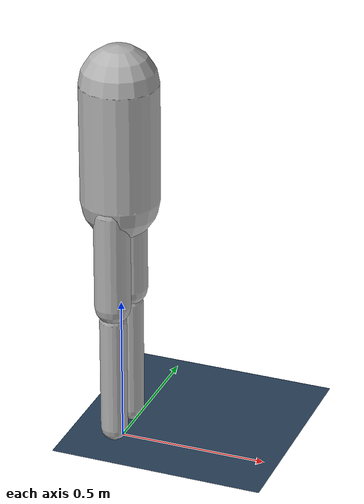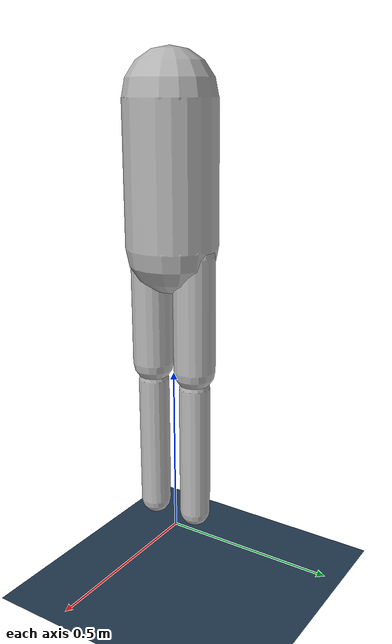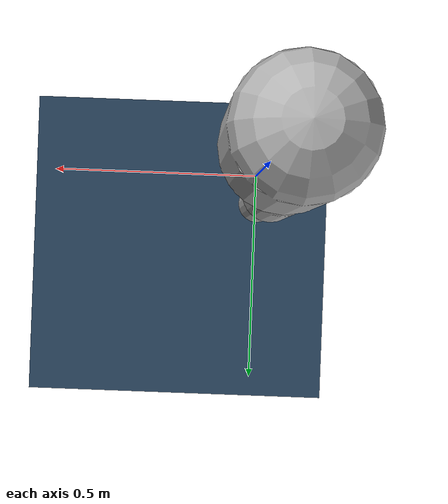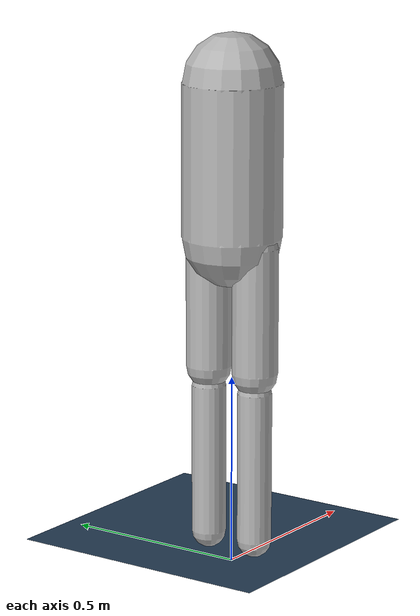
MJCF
<mujoco model="yumi scene">
  <include file="yumi.xml"/>

  <visual>
    <headlight diffuse="0.6 0.6 0.6" ambient="0.1 0.1 0.1" specular="0.9 0.9 0.9"/>
  </visual>

  <asset>
    <texture type="skybox" builtin="flat" rgb1="0 0 0" rgb2="0 0 0" width="512" height="3072"/>
    <texture type="2d" name="groundplane" builtin="checker" mark="edge" rgb1="0.2 0.3 0.4" rgb2="0.1 0.2 0.3" markrgb="0.8 0.8 0.8" width="300" height="300"/>
    <material name="groundplane" texture="groundplane" texuniform="true" texrepeat="5 5" reflectance="0.2"/>
  </asset>

  <worldbody>
    <light pos="1 0 3.5" dir="0 0 -1" directional="true"/>
    <geom name="floor" size="0 0 0.05" type="plane" material="groundplane"/>
  </worldbody>
</mujoco>

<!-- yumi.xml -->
<mujoco model="yumi_12dof">
  <compiler angle="radian"/>

  <default>
    <joint damping="0.001" armature="0.01" frictionloss="0.1"/>
  </default>

  <worldbody>
    <body name="pelvis" pos="0 0 0.923">
      <inertial pos="0 0 0.15" mass="25.7" diaginertia="0.66 0.77 0.24"/>
      <joint name="floating_base_joint" type="free" limited="false" actuatorfrclimited="false"/>
      <geom type="capsule" size="0.13 0.20" pos="0 0 0.15" contype="0" conaffinity="1" density="0" rgba="0.7 0.7 0.7 1"/>

      <body name="left_hip_pitch_link" pos="0 0.07229 -0.039">
        <inertial pos="0 0 0" mass="0.3" diaginertia="0.0003 0.0003 0.0003"/>
        <joint name="left_hip_pitch_joint" pos="0 0 0" axis="0 1 0" range="-2.5307 2.8798" actuatorfrcrange="-120 120"/>
        <body name="left_hip_roll_link" pos="0 0 0">
          <inertial pos="0 0 0" mass="0.3" diaginertia="0.0003 0.0003 0.0003"/>
          <joint name="left_hip_roll_joint" pos="0 0 0" axis="1 0 0" range="-0.5236 2.9671" actuatorfrcrange="-150 150"/>
          <body name="left_hip_yaw_link" pos="0 0 0">
            <inertial pos="0 0 -0.196" mass="3.2" diaginertia="0.043 0.043 0.0058"/>
            <joint name="left_hip_yaw_joint" pos="0 0 0" axis="0 0 1" range="-2.7576 2.7576" actuatorfrcrange="-88 88"/>
            <geom type="capsule" size="0.06 0.166" pos="0 0 -0.196" contype="0" conaffinity="1" density="0" rgba="0.7 0.7 0.7 1"/>
            <body name="left_knee_link" pos="0 0 -0.39215">
              <inertial pos="0 0 -0.222" mass="1.77" diaginertia="0.0295 0.0295 0.0018"/>
              <joint name="left_knee_joint" pos="0 0 0" axis="0 1 0" range="-0.087267 2.8798" actuatorfrcrange="-150 150"/>
              <geom type="capsule" size="0.045 0.199" pos="0 0 -0.222" contype="0" conaffinity="1" density="0" rgba="0.7 0.7 0.7 1"/>
              <body name="left_ankle_pitch_link" pos="0 0 -0.44377">
                <inertial pos="0 0 0" mass="0.05" diaginertia="1e-5 1e-5 1e-5"/>
                <joint name="left_ankle_pitch_joint" pos="0 0 0" axis="0 1 0" range="-0.87267 0.5236" actuatorfrcrange="-60 60"/>
                <body name="left_ankle_roll_link" pos="0 0 0">
                  <inertial pos="0.028 0 -0.04" mass="0.55" diaginertia="0.00034 0.00129 0.0014"/>
                  <joint name="left_ankle_roll_joint" pos="0 0 0" axis="1 0 0" range="-0.2618 0.2618" actuatorfrcrange="-60 60"/>
                  <geom size="0.022" pos="-0.045 0.025 -0.076" rgba="0.2 0.2 0.2 1"/>
                  <geom size="0.022" pos="-0.045 -0.025 -0.076" rgba="0.2 0.2 0.2 1"/>
                  <geom size="0.022" pos="0.10 0.025 -0.076" rgba="0.2 0.2 0.2 1"/>
                  <geom size="0.022" pos="0.10 -0.025 -0.076" rgba="0.2 0.2 0.2 1"/>
                </body>
              </body>
            </body>
          </body>
        </body>
      </body>

      <body name="right_hip_pitch_link" pos="0 -0.07229 -0.039">
        <inertial pos="0 0 0" mass="0.3" diaginertia="0.0003 0.0003 0.0003"/>
        <joint name="right_hip_pitch_joint" pos="0 0 0" axis="0 1 0" range="-2.5307 2.8798" actuatorfrcrange="-120 120"/>
        <body name="right_hip_roll_link" pos="0 0 0">
          <inertial pos="0 0 0" mass="0.3" diaginertia="0.0003 0.0003 0.0003"/>
          <joint name="right_hip_roll_joint" pos="0 0 0" axis="1 0 0" range="-2.9671 0.5236" actuatorfrcrange="-150 150"/>
          <body name="right_hip_yaw_link" pos="0 0 0">
            <inertial pos="0 0 -0.196" mass="3.2" diaginertia="0.043 0.043 0.0058"/>
            <joint name="right_hip_yaw_joint" pos="0 0 0" axis="0 0 1" range="-2.7576 2.7576" actuatorfrcrange="-88 88"/>
            <geom type="capsule" size="0.06 0.166" pos="0 0 -0.196" contype="0" conaffinity="1" density="0" rgba="0.7 0.7 0.7 1"/>
            <body name="right_knee_link" pos="0 0 -0.39215">
              <inertial pos="0 0 -0.222" mass="1.77" diaginertia="0.0295 0.0295 0.0018"/>
              <joint name="right_knee_joint" pos="0 0 0" axis="0 1 0" range="-0.087267 2.8798" actuatorfrcrange="-150 150"/>
              <geom type="capsule" size="0.045 0.199" pos="0 0 -0.222" contype="0" conaffinity="1" density="0" rgba="0.7 0.7 0.7 1"/>
              <body name="right_ankle_pitch_link" pos="0 0 -0.44377">
                <inertial pos="0 0 0" mass="0.05" diaginertia="1e-5 1e-5 1e-5"/>
                <joint name="right_ankle_pitch_joint" pos="0 0 0" axis="0 1 0" range="-0.87267 0.5236" actuatorfrcrange="-60 60"/>
                <body name="right_ankle_roll_link" pos="0 0 0">
                  <inertial pos="0.028 0 -0.04" mass="0.55" diaginertia="0.00034 0.00129 0.0014"/>
                  <joint name="right_ankle_roll_joint" pos="0 0 0" axis="1 0 0" range="-0.2618 0.2618" actuatorfrcrange="-60 60"/>
                  <geom size="0.022" pos="-0.045 0.025 -0.076" rgba="0.2 0.2 0.2 1"/>
                  <geom size="0.022" pos="-0.045 -0.025 -0.076" rgba="0.2 0.2 0.2 1"/>
                  <geom size="0.022" pos="0.10 0.025 -0.076" rgba="0.2 0.2 0.2 1"/>
                  <geom size="0.022" pos="0.10 -0.025 -0.076" rgba="0.2 0.2 0.2 1"/>
                </body>
              </body>
            </body>
          </body>
        </body>
      </body>
    </body>
  </worldbody>

  <actuator>
    <motor name="left_hip_pitch_joint" joint="left_hip_pitch_joint"/>
    <motor name="left_hip_roll_joint" joint="left_hip_roll_joint"/>
    <motor name="left_hip_yaw_joint" joint="left_hip_yaw_joint"/>
    <motor name="left_knee_joint" joint="left_knee_joint"/>
    <motor name="left_ankle_pitch_joint" joint="left_ankle_pitch_joint"/>
    <motor name="left_ankle_roll_joint" joint="left_ankle_roll_joint"/>
    <motor name="right_hip_pitch_joint" joint="right_hip_pitch_joint"/>
    <motor name="right_hip_roll_joint" joint="right_hip_roll_joint"/>
    <motor name="right_hip_yaw_joint" joint="right_hip_yaw_joint"/>
    <motor name="right_knee_joint" joint="right_knee_joint"/>
    <motor name="right_ankle_pitch_joint" joint="right_ankle_pitch_joint"/>
    <motor name="right_ankle_roll_joint" joint="right_ankle_roll_joint"/>
  </actuator>
</mujoco>
